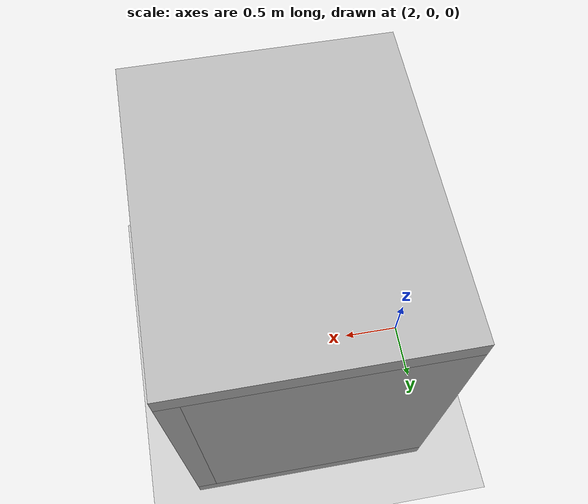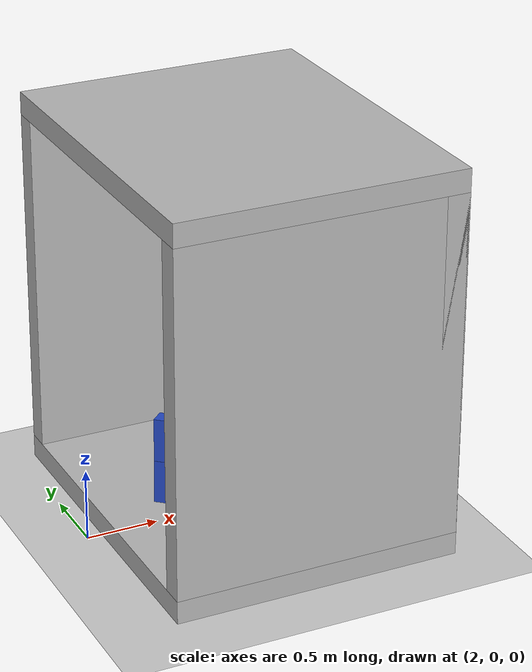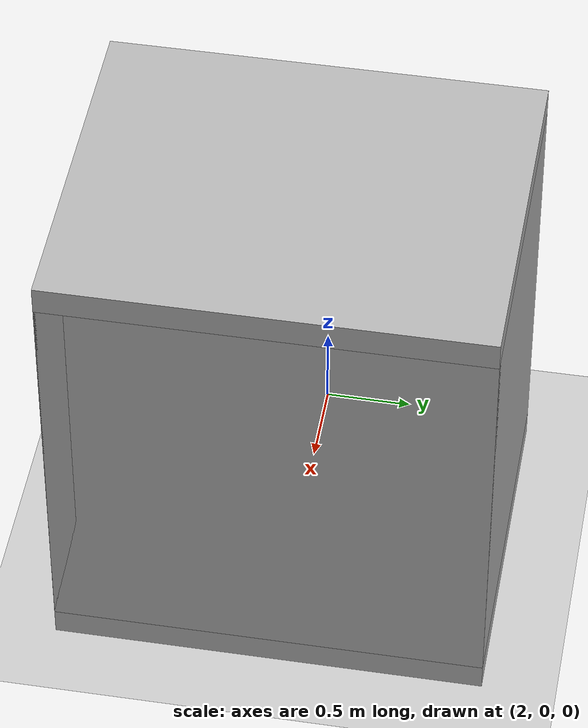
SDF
<sdf version="1.6">
 <world name="default">
  <light name="sun" type="directional">
   <pose>0 0 10 0 -0 0</pose>
   <diffuse>0.8 0.8 0.8 1</diffuse>
   <specular>0.1 0.1 0.1 1</specular>
   <attenuation>
    <range>1000</range>
    <constant>0.9</constant>
    <linear>0.01</linear>
    <quadratic>0.001</quadratic>
   </attenuation>
   <direction>-0.5 0.5 -1</direction>
  </light>
  <model name="ground_plane">
   <static>1</static>
   <link name="link">
    <collision name="collision">
     <geometry><plane><normal>0 0 1</normal><size>100 100</size></plane></geometry>
     <surface><friction><ode><mu>100</mu><mu2>50</mu2></ode></friction></surface>
    </collision>
    <visual name="visual">
     <cast_shadows>0</cast_shadows>
     <geometry><plane><normal>0 0 1</normal><size>100 100</size></plane></geometry>
     <material>
      <script><uri>file://media/materials/scripts/gazebo.material</uri><name>Gazebo/Grey</name></script>
     </material>
    </visual>
   </link>
  </model>
  <physics name="default_physics" default="0" type="ode">
   <real_time_update_rate>0</real_time_update_rate>
   <max_step_size>0.001</max_step_size>
   <real_time_factor>1</real_time_factor>
  </physics>
  <gravity>0 0 -9.8</gravity>
  <magnetic_field>6e-06 2.3e-05 -4.2e-05</magnetic_field>
  <atmosphere type="adiabatic"/>
  <scene><ambient>0.4 0.4 0.4 1</ambient><background>0.7 0.7 0.7 1</background><shadows>1</shadows></scene>
  <spherical_coordinates>
   <surface_model>EARTH_WGS84</surface_model>
   <latitude_deg>0</latitude_deg>
   <longitude_deg>0</longitude_deg>
   <elevation>0</elevation>
   <heading_deg>0</heading_deg>
  </spherical_coordinates>
  <model name="container">
   <link name="container">
    <inertial>
     <pose>0.22439 0 1.64098 0 -0 0</pose>
     <mass>205</mass>
     <inertia>
      <ixx>329.883</ixx>
      <ixy>1.59439e-15</ixy>
      <ixz>12.9249</ixz>
      <iyy>229.817</iyy>
      <iyz>1.16598e-14</iyz>
      <izz>267.609</izz>
     </inertia>
    </inertial>
    <collision name="container_back_collision">
     <pose>0.92 0 1.36 0 -0 0</pose>
     <geometry><box><size>0.16 2.45 2.4</size></box></geometry>
    </collision>
    <collision name="container_bottom_collision_1">
     <pose>0 0 0.08 0 -0 0</pose>
     <geometry><box><size>2 2.45 0.16</size></box></geometry>
    </collision>
    <collision name="container_left_collision_2">
     <pose>0 1.145 1.36 0 -0 0</pose>
     <geometry><box><size>2 0.16 2.4</size></box></geometry>
    </collision>
    <collision name="container_right_collision_3">
     <pose>0 -1.145 1.36 0 -0 0</pose>
     <geometry><box><size>2 0.16 2.4</size></box></geometry>
    </collision>
    <collision name="container_top_collision_4">
     <pose>0 0 2.64 0 -0 0</pose>
     <geometry><box><size>2 2.45 0.16</size></box></geometry>
    </collision>
    <visual name="container_back_visual">
     <pose>0.92 0 1.36 0 -0 0</pose>
     <geometry><box><size>0.16 2.45 2.4</size></box></geometry>
    </visual>
    <visual name="container_bottom_visual_1">
     <pose>0 0 0.08 0 -0 0</pose>
     <geometry><box><size>2 2.45 0.16</size></box></geometry>
    </visual>
    <visual name="container_left_visual_2">
     <pose>0 1.145 1.36 0 -0 0</pose>
     <geometry><box><size>2 0.16 2.4</size></box></geometry>
    </visual>
    <visual name="container_right_visual_3">
     <pose>0 -1.145 1.36 0 -0 0</pose>
     <geometry><box><size>2 0.16 2.4</size></box></geometry>
    </visual>
    <visual name="container_top_visual_4">
     <pose>0 0 2.64 0 -0 0</pose>
     <geometry><box><size>2 2.45 0.16</size></box></geometry>
    </visual>
   </link>
   <pose>3.10044 0.000469 -0 0 0 -0.000156</pose>
  </model>
  <model name="roblog-dhl-box-blue-simple-0-1448">
   <link name="link">
    <inertial>
     <mass>0.25</mass>
     <inertia>
      <ixx>0.00218083</ixx>
      <ixy>0</ixy>
      <ixz>0</ixz>
      <iyy>0.00473308</iyy>
      <iyz>0</iyz>
      <izz>0.00321375</izz>
     </inertia>
    </inertial>
    <collision name="link_collision"><geometry><box><size>0.372 0.126 0.298</size></box></geometry></collision>
    <visual name="link_visual">
     <geometry><box><size>0.372 0.126 0.298</size></box></geometry>
     <material>
      <script><name>Gazebo/Blue</name><uri>file://media/materials/scripts/gazebo.material</uri></script>
     </material>
    </visual>
   </link>
   <pose>2.66054 -0.09078 0.317221 -0.085847 -0.018883 -0.728567</pose>
  </model>
  <model name="roblog-dhl-box-blue-simple-1-1449">
   <link name="link">
    <inertial>
     <mass>0.25</mass>
     <inertia>
      <ixx>0.00218083</ixx>
      <ixy>0</ixy>
      <ixz>0</ixz>
      <iyy>0.00473308</iyy>
      <iyz>0</iyz>
      <izz>0.00321375</izz>
     </inertia>
    </inertial>
    <collision name="link_collision"><geometry><box><size>0.372 0.126 0.298</size></box></geometry></collision>
    <visual name="link_visual">
     <geometry><box><size>0.372 0.126 0.298</size></box></geometry>
     <material>
      <script><name>Gazebo/Blue</name><uri>file://media/materials/scripts/gazebo.material</uri></script>
     </material>
    </visual>
   </link>
   <pose>2.67089 -0.075158 0.614728 -0.085497 -0.020412 -0.746371</pose>
  </model>
  <model name="roblog-vanish-detergent-simple-2-1450">
   <link name="link">
    <inertial>
     <mass>0.08</mass>
     <inertia>
      <ixx>0.000324987</ixx>
      <ixy>0</ixy>
      <ixz>0</ixz>
      <iyy>0.000324987</iyy>
      <iyz>0</iyz>
      <izz>0.00011664</izz>
     </inertia>
    </inertial>
    <collision name="link_collision">
     <geometry><cylinder><length>0.2</length><radius>0.054</radius></cylinder></geometry>
    </collision>
    <visual name="link_visual">
     <geometry><cylinder><length>0.2</length><radius>0.054</radius></cylinder></geometry>
     <material>
      <script><name>Gazebo/PurpleGlow</name><uri>file://media/materials/scripts/gazebo.material</uri></script>
     </material>
    </visual>
    <velocity_decay><linear>0.005</linear><angular>0.005</angular></velocity_decay>
   </link>
   <pose>2.82674 -0.352884 0.273608 0.216327 -0.475359 -0.592418</pose>
  </model>
  <model name="roblog-maisels-barrel-simple-3-1451">
   <link name="link">
    <inertial>
     <mass>0.54</mass>
     <inertia>
      <ixx>0.00354312</ixx>
      <ixy>0</ixy>
      <ixz>0</ixz>
      <iyy>0.00354312</iyy>
      <iyz>0</iyz>
      <izz>0.00181548</izz>
     </inertia>
    </inertial>
    <collision name="link_collision">
     <geometry><cylinder><length>0.242</length><radius>0.082</radius></cylinder></geometry>
    </collision>
    <visual name="link_visual">
     <geometry><cylinder><length>0.242</length><radius>0.082</radius></cylinder></geometry>
     <material>
      <script><name>Gazebo/Orange</name><uri>file://media/materials/scripts/gazebo.material</uri></script>
     </material>
    </visual>
    <velocity_decay><linear>0.005</linear><angular>0.005</angular></velocity_decay>
   </link>
   <pose>3.00924 -0.105563 0.292855 -0.194919 -1.01381 -0.429741</pose>
  </model>
 </world>
</sdf>
